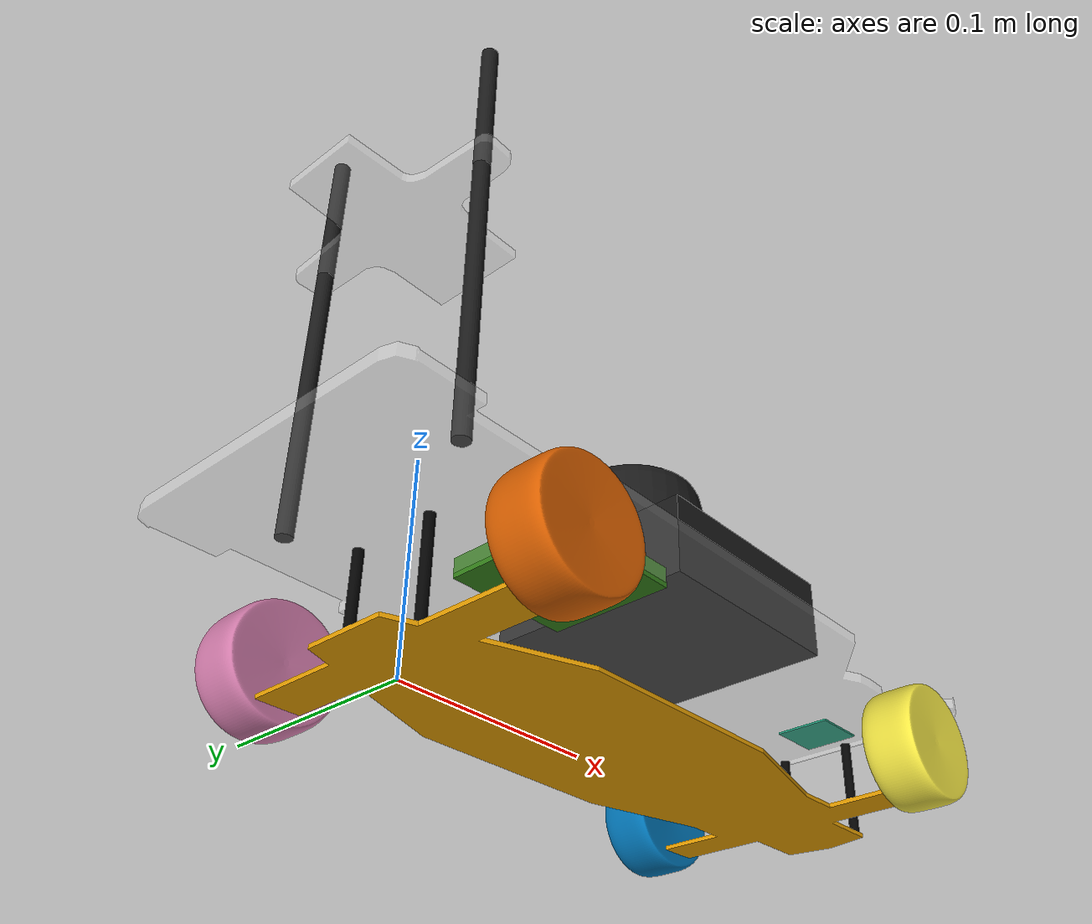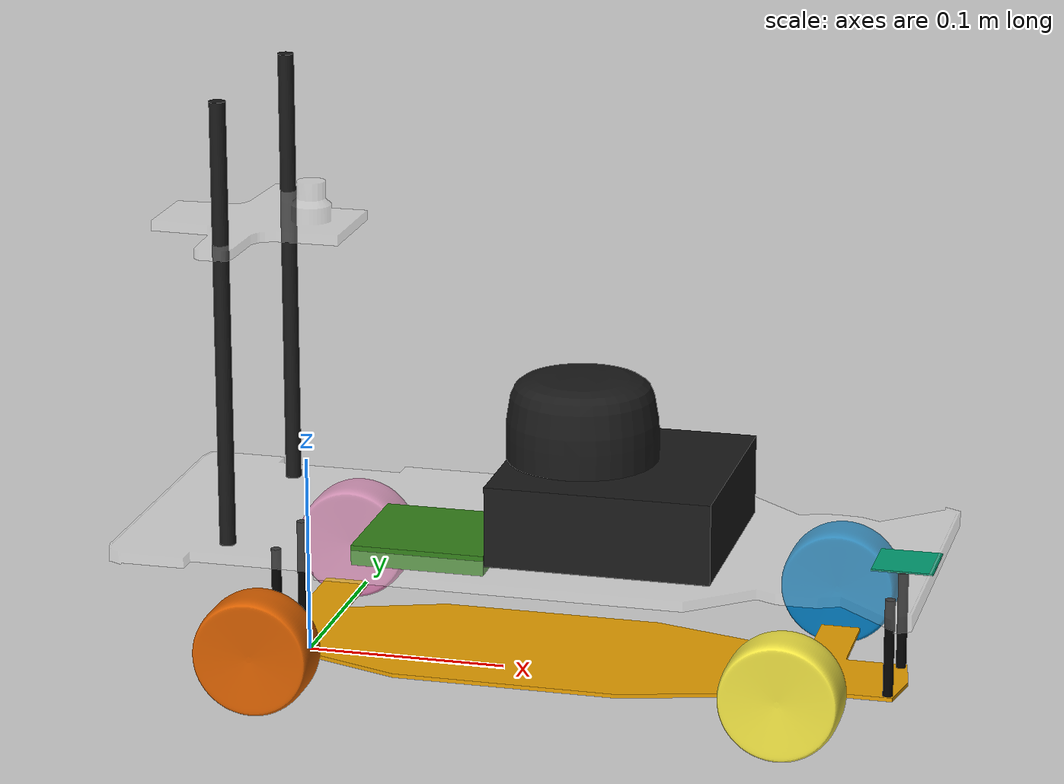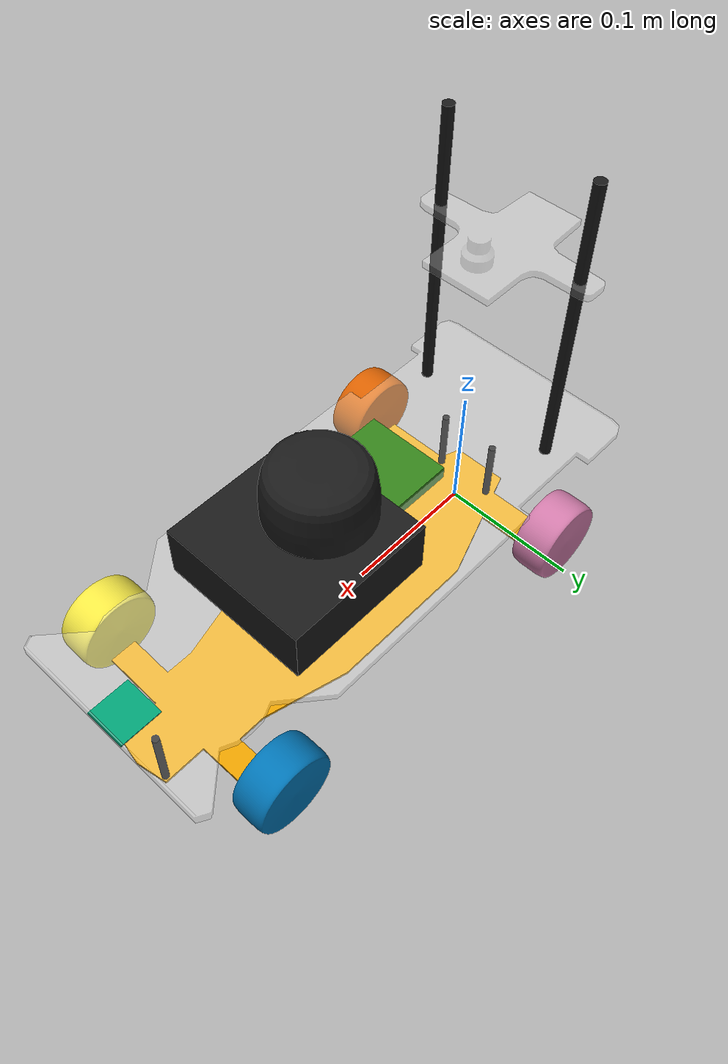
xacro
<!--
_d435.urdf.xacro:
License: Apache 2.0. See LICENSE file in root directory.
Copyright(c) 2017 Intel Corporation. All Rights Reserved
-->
<?xml version="1.0"?>
<robot name="$(arg car_name)" xmlns:xacro="http://www.ros.org/wiki/xacro">
    <xacro:include filename="$(find car_description)/urdf/_d435.urdf.xacro"/>
    <xacro:include filename="$(find car_description)/urdf/rplidar_a2.xacro"/>
    <xacro:include filename="$(find car_description)/urdf/common.xacro"/>
    <xacro:arg name="tf_prefix" default=""/>
    <xacro:arg name="agent_prefix" default=""/>

    <material name="black">
        <color rgba="0.1 0.1 0.1 1"/>
    </material>

    <material name="plastic">
        <color rgba="1 1 1 0.25"/>
    </material>

    <material name="imu">
        <color rgba="0.2 0.5 0.1 1"/>
    </material>

    <material name="grey">
        <color rgba="0.75 0.75 0.75 1"/>
    </material>

    <material name="white">
        <color rgba="0.95 0.95 0.95 1"/>
    </material>

    <link name="$(arg tf_prefix)base_link">
        <visual>
            <origin rpy="0.0 0 0" xyz="0.135 0 0.01"/>
            <geometry>
                <mesh filename="file://$(find car_description)/meshes/chasi.dae"/>
            </geometry>
        </visual>
        <collision>
            <origin rpy="0.0 0 0" xyz="0.135 0 0.01"/>
            <geometry>
                <mesh filename="file://$(find car_description)/meshes/chasi.dae"/>
            </geometry>
        </collision>
        <xacro:box_inertial_with_origin mass="30.0" x="0.2" y="0.1" z="0.05">
            <origin rpy="0.0 0 0" xyz="0.115 0 0.0"/>
        </xacro:box_inertial_with_origin>
    </link>

    <link name="$(arg tf_prefix)board">
        <visual>
            <origin rpy="0.0 0 0" xyz="0.115 0 0"/>
            <geometry>
                <mesh filename="file://$(find car_description)/meshes/board.dae"/>
            </geometry>
            <material name="plastic"/>
        </visual>
        <collision>
            <origin rpy="0.0 0 0" xyz="0.115 0 0"/>
            <geometry>
                <mesh filename="file://$(find car_description)/meshes/board.dae"/>
            </geometry>
        </collision>
        <xacro:box_inertial_with_origin x="0.3" y="0.1" z="0.1" mass="0.3">
            <origin xyz="0 0 0" rpy="0 0 0"/>
        </xacro:box_inertial_with_origin>
    </link>

    <link name="$(arg tf_prefix)camera_board">
        <visual>
            <origin rpy="0.0 0 0" xyz="0 0 0"/>
            <geometry>
                <mesh filename="file://$(find car_description)/meshes/camera_board.dae"/>
            </geometry>
            <material name="plastic"/>
        </visual>
        <collision>
            <origin rpy="0.0 0 0" xyz="0 0 0"/>
            <geometry>
                <mesh filename="file://$(find car_description)/meshes/camera_board.dae"/>
            </geometry>
        </collision>
        <inertial>
            <origin rpy="0.0 0 0" xyz="0 0 0"/>
            <mass value="0.1"/>
            <inertia ixx="0.00014165" ixy="0.0" ixz="0.0" iyy="0.00006758" iyz="0.0" izz="0.00020865"/>
        </inertial>
    </link>

    <xacro:macro name="wheel" params="name">
        <link name="${name}">
            <visual>
                <origin rpy="0.0 0.0 0.0" xyz="0.0 0.0 0.0"/>
                <geometry>
                    <mesh filename="file://$(find car_description)/meshes/wheel.dae"/>
                </geometry>
            </visual>
            <collision>
                <origin rpy="0 1.5707 1.5707" xyz="0 0 0"/>
                <geometry>
                    <sphere radius="0.0325"/>
                </geometry>
            </collision>
            <xacro:cylinder_inertial_with_origin radius="0.025" length="0.0325" mass="0.1">
                <origin xyz="0 0 0" rpy="0 1.5707 1.5707"/>
            </xacro:cylinder_inertial_with_origin>
        </link>

        <gazebo reference="${name}">
            <mu1>0.9</mu1>
            <mu2>0.9</mu2>
            <kp>1000000.0</kp> <!--contact stiffness-->
            <kd>1.0</kd> <!--damping-->
            <minDepth>0.001</minDepth>
        </gazebo>

    </xacro:macro>

    <xacro:wheel name="$(arg tf_prefix)wheel_fr"/>
    <xacro:wheel name="$(arg tf_prefix)wheel_fl"/>
    <xacro:wheel name="$(arg tf_prefix)wheel_br"/>
    <xacro:wheel name="$(arg tf_prefix)wheel_bl"/>

    <link name="$(arg tf_prefix)axis_fl">
        <visual>
            <origin rpy="0.0 0.0 0.0" xyz="0.0 0.0 0.0"/>
            <geometry>
                <box size="0.001 0.001 0.001"/>
            </geometry>
            <material name="black"/>
        </visual>
        <collision>
            <geometry>
                <box size="0 0 0"/>
            </geometry>
        </collision>
        <xacro:sphere_inertial radius="0.02" mass="0.15"/>
    </link>

    <link name="$(arg tf_prefix)axis_fr">
        <visual>
            <origin rpy="0.0 0.0 0.0" xyz="0.0 0.0 0.0"/>
            <geometry>
                <box size="0 0 0"/>
            </geometry>
            <material name="black"/>
        </visual>
        <collision>
            <geometry>
                <box size="0.001 0.001 0.001"/>
            </geometry>
        </collision>
        <xacro:sphere_inertial radius="0.02" mass="0.15"/>
    </link>

    <link name="$(arg tf_prefix)imu">
        <visual>
            <geometry>
                <box size="0.066 0.064 0.01"/>
            </geometry>
            <origin rpy="0 0 0" xyz="0 0 0"/>
            <material name="imu"/>
        </visual>
        <collision>
            <geometry>
                <box size="0.066 0.064 0.01"/>
            </geometry>
        </collision>
        <inertial>
            <mass value="0.2"/>
            <inertia ixx="0.00006993" ixy="0.0" ixz="0.0" iyy="0.00007427" iyz="0.0" izz="0.00014087"/>
        </inertial>
    </link>

    <link name="$(arg tf_prefix)marker">
        <visual>
            <geometry>
                <mesh filename="file://$(find car_description)/meshes/marker.dae"/>
            </geometry>
            <origin rpy="0 0 1.5708" xyz="0 0 0"/>

        </visual>
        <collision>
            <geometry>
                <box size="0.03 0.03 0.000001"/>
            </geometry>
        </collision>
        <inertial>
            <mass value="0.001"/>
            <inertia ixx="0.00000008" ixy="0.0" ixz="0.0" iyy="0.00000008" iyz="0.0" izz="0.00000015"/>
        </inertial>
    </link>

    <link name="$(arg tf_prefix)support_l">
        <visual>
            <geometry>
                <cylinder length="0.22" radius="0.004"/>
            </geometry>
            <origin rpy="0 0 0" xyz="0 0 0"/>
            <material name="black"/>
        </visual>
        <collision>
            <geometry>
                <cylinder length="0.22" radius="0.004"/>
            </geometry>
        </collision>
        <inertial>
            <mass value="0.001"/>
            <inertia ixx="0.00000404" ixy="0.0" ixz="0.0" iyy="0.00000404" iyz="0.0" izz="0.00000001"/>
        </inertial>
    </link>

    <link name="$(arg tf_prefix)support_r">
        <visual>
            <geometry>
                <cylinder length="0.22" radius="0.004"/>
            </geometry>
            <origin rpy="0 0 0" xyz="0 0 0"/>
            <material name="black"/>
        </visual>
        <collision>
            <geometry>
                <cylinder length="0.22" radius="0.004"/>
            </geometry>
        </collision>
        <inertial>
            <mass value="0.001"/>
            <inertia ixx="0.00000404" ixy="0.0" ixz="0.0" iyy="0.00000404" iyz="0.0" izz="0.00000001"/>
        </inertial>
    </link>

    <!-- BNO055 -->
    <link name="$(arg tf_prefix)bno055">
    </link>

    <link name="$(arg tf_prefix)nuc">
        <visual>
            <origin rpy="0 0 0" xyz="0 0 0.022"/>
            <geometry>
                <box size="0.11 0.11 0.04"/>
            </geometry>
            <material name="black"/>
        </visual>
        <collision>
            <origin rpy="0 0 0" xyz="0 0 0.022"/>
            <geometry>
                <box size="0.11 0.11 0.04"/>
            </geometry>
        </collision>

        <xacro:box_inertial_with_origin x="0.11" y="0.11" z="0.04" mass="0.7">
            <origin xyz="0 0 0.025" rpy="0 0 0"/>
        </xacro:box_inertial_with_origin>
    </link>

    <!-- front camera -->
    <xacro:property name="front_camera_name" value="camera"/>

    <xacro:sensor_d435 parent="$(arg tf_prefix)camera_board" sensor_name="$(arg tf_prefix)camera">
        <origin xyz="0.03 0 0.025" rpy="0 0.25 0"/>
    </xacro:sensor_d435>

    <xacro:sensor_d435 parent="$(arg tf_prefix)camera_board" sensor_name="rear_camera">
        <origin xyz="-0.02 0 0.025" rpy="0 0.25 3.141"/>
    </xacro:sensor_d435>

    <xacro:sensor_rplidar_a2 parent="$(arg tf_prefix)board" prefix="lidar" tf_prefix="$(arg tf_prefix)">
        <origin xyz="0.14 0 0.0425" rpy="0 0 0"/>
    </xacro:sensor_rplidar_a2>

    <joint name="$(arg tf_prefix)joint_board_to_bno055" type="fixed">
        <parent link="$(arg tf_prefix)board"/>
        <child link="$(arg tf_prefix)bno055"/>
        <origin xyz="0.235 0.0 0.023" rpy="0 0 1.5708"/>
    </joint>

    <joint name="$(arg tf_prefix)base_link_board" type="fixed">
        <parent link="$(arg tf_prefix)base_link"/>
        <child link="$(arg tf_prefix)board"/>
        <origin xyz="0 0 0.07"/>
    </joint>

    <joint name="$(arg tf_prefix)board_cameraboard" type="fixed">
        <parent link="$(arg tf_prefix)board"/>
        <child link="$(arg tf_prefix)camera_board"/>
        <origin xyz="-0.025 0 0.15"/>
    </joint>

    <joint name="$(arg tf_prefix)board_imu" type="fixed">
        <parent link="$(arg tf_prefix)board"/>
        <child link="$(arg tf_prefix)imu"/>
        <origin xyz="0.07 -0.017 0"/>
    </joint>

    <joint name="$(arg tf_prefix)board_marker" type="fixed">
        <parent link="$(arg tf_prefix)board"/>
        <child link="$(arg tf_prefix)marker"/>
        <origin xyz="0.30 0.0 0.0025"/>
    </joint>

    <joint name="$(arg tf_prefix)board_nuc" type="fixed">
        <parent link="$(arg tf_prefix)board"/>
        <child link="$(arg tf_prefix)nuc"/>
        <origin xyz="0.16 0 0"/>
    </joint>

    <joint name="$(arg tf_prefix)frontwheel_steering_left" type="revolute">
        <axis xyz="0 0 1"/>
        <limit effort="100.0" lower="-0.6" upper="0.6" velocity="1.0"/>
        <parent link="$(arg tf_prefix)base_link"/>
        <child link="$(arg tf_prefix)axis_fl"/>
        <origin xyz="0.255 0.08 0.03" rpy="0.0 0.0 0.0"/>
        <dynamics damping="0.2" friction="0.1"/>
    </joint>

    <joint name="$(arg tf_prefix)frontwheel_steering_right" type="revolute">
        <axis xyz="0 0 1"/>
        <limit effort="100.0" lower="-0.6" upper="0.6" velocity="1.0"/>
        <parent link="$(arg tf_prefix)base_link"/>
        <child link="$(arg tf_prefix)axis_fr"/>
        <origin xyz="0.255 -0.08 0.03" rpy="0.0 0.0 0.0"/>
        <dynamics damping="0.2" friction="0.1"/>
    </joint>

    <joint name="$(arg tf_prefix)frontwheel_left" type="continuous">
        <axis xyz="0 1 0"/>
        <parent link="$(arg tf_prefix)axis_fl"/>
        <child link="$(arg tf_prefix)wheel_fl"/>
        <origin xyz="0 0 0" rpy="0.0 0.0 0.0"/>
        <limit effort="100.0" velocity="100.0"/>
        <dynamics damping="0.1" friction="0.1"/>
    </joint>

    <joint name="$(arg tf_prefix)frontwheel_right" type="continuous">
        <axis xyz="0 1 0"/>
        <parent link="$(arg tf_prefix)axis_fr"/>
        <child link="$(arg tf_prefix)wheel_fr"/>
        <origin xyz="0 0 0" rpy="0.0 0.0 0.0"/>
        <limit effort="100.0" velocity="100.0"/>
        <dynamics damping="0.1" friction="0.1"/>
    </joint>

    <joint name="$(arg tf_prefix)rearwheel_left" type="continuous">
        <axis xyz="0 1 0"/>
        <parent link="$(arg tf_prefix)base_link"/>
        <child link="$(arg tf_prefix)wheel_bl"/>
        <origin xyz="0 0.085 0.03" rpy="0.0 0.0 0.0"/>
        <limit effort="100.0" velocity="100.0"/>
        <dynamics damping="0.1" friction="0.1"/>
    </joint>

    <joint name="$(arg tf_prefix)rearwheel_right" type="continuous">
        <axis xyz="0 1 0"/>
        <parent link="$(arg tf_prefix)base_link"/>
        <child link="$(arg tf_prefix)wheel_br"/>
        <origin xyz="0 -0.085 0.03" rpy="0.0 0.0 0.0"/>
        <limit effort="100.0" velocity="100.0"/>
        <dynamics damping="0.1" friction="0.1"/>
    </joint>

    <joint name="$(arg tf_prefix)board_support_l" type="fixed">
        <parent link="$(arg tf_prefix)board"/>
        <child link="$(arg tf_prefix)support_l"/>
        <origin xyz="-0.024000 0.053000 0.112000"/>
    </joint>

    <joint name="$(arg tf_prefix)board_support_r" type="fixed">
        <parent link="$(arg tf_prefix)board"/>
        <child link="$(arg tf_prefix)support_r"/>
        <origin xyz="-0.024000 -0.053000 0.112000"/>
    </joint>

    <ros2_control name="GazeboSystem" type="system">
        <hardware>
          <plugin>gz_ros2_control/GazeboSimSystem</plugin>
        </hardware>
        <joint name="$(arg tf_prefix)rearwheel_left">
            <command_interface name="velocity"/>
            <state_interface name="position"/>
            <state_interface name="velocity"/>
        </joint>

        <joint name="$(arg tf_prefix)rearwheel_right">
            <command_interface name="velocity"/>
            <state_interface name="position"/>
            <state_interface name="velocity"/>
        </joint>

        <joint name="$(arg tf_prefix)frontwheel_left">
            <command_interface name="velocity"/>
            <state_interface name="position"/>
            <state_interface name="velocity"/>
        </joint>
        <joint name="$(arg tf_prefix)frontwheel_right">
            <command_interface name="velocity"/>
            <state_interface name="position"/>
            <state_interface name="velocity"/>
        </joint>

        <joint name="$(arg tf_prefix)frontwheel_steering_left">
            <command_interface name="position"/>
            <state_interface name="position"/>
        </joint>
        <joint name="$(arg tf_prefix)frontwheel_steering_right">
            <command_interface name="position"/>
            <state_interface name="position"/>
        </joint>

    </ros2_control>

    <gazebo reference="$(arg tf_prefix)rearwheel_left">
        <implicitSpringDamper>true</implicitSpringDamper>
    </gazebo>
    <gazebo reference="$(arg tf_prefix)rearwheel_right">
        <implicitSpringDamper>true</implicitSpringDamper>
    </gazebo>
    <gazebo reference="$(arg tf_prefix)frontwheel_right">
        <implicitSpringDamper>true</implicitSpringDamper>
    </gazebo>
    <gazebo reference="$(arg tf_prefix)frontwheel_left">
        <implicitSpringDamper>true</implicitSpringDamper>
    </gazebo>
    <gazebo reference="$(arg tf_prefix)frontwheel_steering_right">
        <implicitSpringDamper>true</implicitSpringDamper>
    </gazebo>
    <gazebo reference="$(arg tf_prefix)frontwheel_steering_left">
        <implicitSpringDamper>true</implicitSpringDamper>
    </gazebo>

      <gazebo>
        <!-- Joint state publisher -->
        <plugin filename="gz_ros2_control-system" name="gz_ros2_control::GazeboSimROS2ControlPlugin">
          <parameters>$(find sim_car_controller)/config/control.yaml</parameters>
        </plugin>

        <plugin
              filename="gz-sim-odometry-publisher-system"
              name="gz::sim::systems::OdometryPublisher">
          <odom_frame>map</odom_frame>
          <robot_base_frame>base_link</robot_base_frame>
          <odom_publish_frequency>30.0</odom_publish_frequency>
          <odom_topic>/simulation/odom_ground_truth</odom_topic>
        </plugin>
      </gazebo>

    <gazebo reference="$(arg tf_prefix)imu">
        <sensor name="$(arg tf_prefix)imu" type="imu">
            <always_on>1</always_on>
            <update_rate>100</update_rate>
            <visualize>true</visualize>
            <topic>/sensors/imu</topic>
        </sensor>
    </gazebo>

    <gazebo reference="$(arg tf_prefix)camera_depth_frame">
        <sensor type="depth" name="/sensors/camera/depth">
            <always_on>1</always_on>
            <visualize>true</visualize>
            <update_rate>15.0</update_rate>
            <topic>/sensors/camera/depth/image_rect_raw</topic>
            <gz_frame_id>$(arg tf_prefix)camera_depth_optical_frame</gz_frame_id>
            <pose>0 0 0 0 0.25 0</pose>
            <camera>
                <horizontal_fov>1.3900031938640904</horizontal_fov>
                <image>
                    <width>640</width>
                    <height>480</height>
                    <format>L8</format>
                </image>
                <clip>
                    <near>0.05</near>
                    <far>15.0</far>
                </clip>
                <noise>
                    <type>gaussian</type>
                    <mean>0.0</mean>
                    <stddev>0.007</stddev>
                </noise>
            </camera>
        </sensor>
    </gazebo>

    <gazebo reference="$(arg tf_prefix)camera_color_frame">
        <sensor type="camera" name="/sensors/camera/color">
            <update_rate>15.0</update_rate>
            <topic>/sensors/camera/color/image_raw</topic>
            <gz_frame_id>$(arg tf_prefix)camera_color_optical_frame</gz_frame_id>
            <pose>0 0 0.02 0 0.25 0</pose>
            <camera>
                <horizontal_fov>0.95417536656506718</horizontal_fov>
                <image>
                    <width>640</width>
                    <height>480</height>
                    <format>R8G8B8</format>
                </image>
                <clip>
                    <near>0.01</near>
                    <far>50.0</far>
                </clip>
                <noise>
                    <type>gaussian</type>
                    <mean>0.0</mean>
                    <stddev>0.01</stddev>
                </noise>

            </camera>
        </sensor>
    </gazebo>

    <gazebo reference="$(arg tf_prefix)laser">
        <sensor type="gpu_lidar" name="rp_lidar_sensor">
            <pose relative_to='$(arg tf_prefix)laser'>0 0 0 0 0 0</pose>
            <visualize>true</visualize>
            <update_rate>10</update_rate>
            <topic>/sensors/rplidar/scan</topic>
            <always_on>1</always_on>
            <ray>
                <scan>
                    <horizontal>
                        <samples>360</samples>
                        <resolution>1</resolution>
                        <min_angle>-3.14159</min_angle>
                        <max_angle>3.14159</max_angle>
                    </horizontal>
                    <vertical>
                        <samples>1</samples>
                        <resolution>0.01</resolution>
                        <min_angle>0</min_angle>
                        <max_angle>0</max_angle>
                    </vertical>
                </scan>
                <range>
                    <min>0.15</min>
                    <max>8.0</max>
                    <resolution>0.01</resolution>
                </range>
                <noise>
                    <type>gaussian</type>
                    <mean>0.0</mean>
                    <stddev>0.01</stddev>
                </noise>
            </ray>
        </sensor>
    </gazebo>

    <gazebo reference="$(arg tf_prefix)support_r">
        <material>Gazebo/Black</material>
    </gazebo>

    <gazebo reference="$(arg tf_prefix)support_l">
        <material>Gazebo/Black</material>
    </gazebo>

    <gazebo reference="$(arg tf_prefix)nuc">
        <material>Gazebo/Black</material>
    </gazebo>
</robot>

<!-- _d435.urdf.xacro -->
<robot name="sensor_d435" xmlns:xacro="http://ros.org/wiki/xacro">
  <xacro:macro name="sensor_d435" params="sensor_name parent *origin">
    <xacro:property name="M_PI" value="3.1415926535897931" />

    <!-- The following values are approximate, and the camera node
     publishing TF values with actual calibrated camera extrinsic values -->
    <xacro:property name="d435_cam_depth_to_left_ir_offset" value="0.0"/>
    <xacro:property name="d435_cam_depth_to_right_ir_offset" value="-0.050"/>
    <xacro:property name="d435_cam_depth_to_color_offset" value="0.015"/>

    <!-- The following values model the aluminum peripherial case for the
  	D435 camera, with the camera joint represented by the actual
  	peripherial camera tripod mount -->
    <xacro:property name="d435_cam_width" value="0.090"/>
    <xacro:property name="d435_cam_height" value="0.025"/>
    <xacro:property name="d435_cam_depth" value="0.02505"/>
    <xacro:property name="d435_cam_mount_from_center_offset" value="0.0149"/>

    <!-- The following offset is relative the the physical D435 camera peripherial
  	camera tripod mount -->
    <xacro:property name="d435_cam_depth_px" value="${d435_cam_mount_from_center_offset}"/>
    <xacro:property name="d435_cam_depth_py" value="0.0175"/>
    <xacro:property name="d435_cam_depth_pz" value="${d435_cam_height/2}"/>

    <material name="${sensor_name}aluminum">
      <color rgba="0.5 0.5 0.5 1"/>
    </material>

    <!-- camera body, with origin at bottom screw mount -->
    <joint name="${sensor_name}_joint" type="fixed">
      <xacro:insert_block name="origin" />
      <parent link="${parent}"/>
      <child link="${sensor_name}_bottom_screw_frame" />
    </joint>
    <link name="${sensor_name}_bottom_screw_frame"/>

    <joint name="${sensor_name}_link_joint" type="fixed">
      <origin xyz="0 ${d435_cam_depth_py} ${d435_cam_depth_pz}" rpy="0 0 0"/>
      <parent link="${sensor_name}_bottom_screw_frame"/>
      <child link="${sensor_name}_link" />
    </joint>

    <link name="${sensor_name}_link">
      <collision>
        <origin xyz="0 ${-d435_cam_depth_py} 0" rpy="0 0 0"/>
        <geometry>
          <box size="${d435_cam_depth} ${d435_cam_width} ${d435_cam_height}"/>
        </geometry>
      </collision>
      <inertial>
        <!-- The following are not reliable values, and should not be used for modeling -->
        <mass value="0.1" />
        <origin xyz="0 0 0" />
        <inertia ixx="0.003881243" ixy="0.0" ixz="0.0" iyy="0.000498940" iyz="0.0" izz="0.003879257" />
      </inertial>
    </link>

    <!-- camera depth joints and links -->
    <joint name="${sensor_name}_depth_joint" type="fixed">
      <origin xyz="0 0 0" rpy="0 0 0"/>
      <parent link="${sensor_name}_link"/>
      <child link="${sensor_name}_depth_frame" />
    </joint>
    <link name="${sensor_name}_depth_frame"/>

    <joint name="${sensor_name}_depth_optical_joint" type="fixed">
      <origin xyz="0 0 0" rpy="${-M_PI/2} 0 ${-M_PI/2}" />
      <parent link="${sensor_name}_depth_frame" />
      <child link="${sensor_name}_depth_optical_frame" />
    </joint>
    <link name="${sensor_name}_depth_optical_frame"/>

    <!-- camera left IR joints and links -->
    <joint name="${sensor_name}_left_ir_joint" type="fixed">
      <origin xyz="0 ${d435_cam_depth_to_left_ir_offset} 0" rpy="0 0 0" />
      <parent link="${sensor_name}_depth_frame" />
      <child link="${sensor_name}_left_ir_frame" />
    </joint>
    <link name="${sensor_name}_left_ir_frame"/>

    <joint name="${sensor_name}_left_ir_optical_joint" type="fixed">
      <origin xyz="0 0 0" rpy="${-M_PI/2} 0 ${-M_PI/2}" />
      <parent link="${sensor_name}_left_ir_frame" />
      <child link="${sensor_name}_left_ir_optical_frame" />
    </joint>
    <link name="${sensor_name}_left_ir_optical_frame"/>

    <!-- camera right IR joints and links -->
    <joint name="${sensor_name}_right_ir_joint" type="fixed">
      <origin xyz="0 ${d435_cam_depth_to_right_ir_offset} 0" rpy="0 0 0" />
      <parent link="${sensor_name}_depth_frame" />
      <child link="${sensor_name}_right_ir_frame" />
    </joint>
    <link name="${sensor_name}_right_ir_frame"/>

    <joint name="${sensor_name}_right_ir_optical_joint" type="fixed">
      <origin xyz="0 0 0" rpy="${-M_PI/2} 0 ${-M_PI/2}" />
      <parent link="${sensor_name}_right_ir_frame" />
      <child link="${sensor_name}_right_ir_optical_frame" />
    </joint>
    <link name="${sensor_name}_right_ir_optical_frame"/>

    <!-- camera color joints and links -->
    <joint name="${sensor_name}_color_joint" type="fixed">
      <origin xyz="0 ${d435_cam_depth_to_color_offset} 0" rpy="0 0 0" />
      <parent link="${sensor_name}_depth_frame" />
      <child link="${sensor_name}_color_frame" />
    </joint>
    <link name="${sensor_name}_color_frame"/>

    <joint name="${sensor_name}_color_optical_joint" type="fixed">
      <origin xyz="0 0 0" rpy="${-M_PI/2} 0 ${-M_PI/2}" />
      <parent link="${sensor_name}_color_frame" />
      <child link="${sensor_name}_color_optical_frame" />
    </joint>
    <link name="${sensor_name}_color_optical_frame"/>
  </xacro:macro>
</robot>

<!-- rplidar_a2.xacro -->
<robot xmlns:xacro="http://www.ros.org/wiki/xacro">

    <xacro:macro name="sensor_rplidar_a2"
                 params="prefix parent tf_prefix prefix_topic:='front_laser' *origin min_angle:=-3.14159 max_angle:=3.14159">

        <joint name="${tf_prefix}${prefix}_base_joint" type="fixed">
            <xacro:insert_block name="origin"/>
            <parent link="${parent}"/>
            <child link="${tf_prefix}${prefix}_base_link"/>
        </joint>

        <link name="${tf_prefix}${prefix}_base_link">
            <collision>
                <origin xyz="0 0 0" rpy="0 0 0"/>
                <geometry>
                    <mesh filename="file://$(find car_description)/meshes/laser.dae"/>
                </geometry>
            </collision>

            <visual>
                <origin xyz="0 0 0" rpy="0 0 0"/>
                <geometry>
                    <mesh filename="file://$(find car_description)/meshes/laser.dae"/>
                </geometry>
                <material name="black"/>
            </visual>

            <inertial>
                <mass value="1e-5"/>
                <origin xyz="0 0 0" rpy="0 0 0"/>
                <inertia ixx="1e-6" ixy="0" ixz="0" iyy="1e-6" iyz="0" izz="1e-6"/>
            </inertial>
        </link>

        <joint name="${tf_prefix}${prefix}_laser_joint" type="fixed">
            <origin xyz="0 0 0.03086" rpy="0 0 3.1415"/>
            <parent link="${tf_prefix}${prefix}_base_link"/>
            <child link="${tf_prefix}laser"/>
        </joint>

        <link name="${tf_prefix}laser">
        </link>
    </xacro:macro>
</robot>

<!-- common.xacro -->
<robot
        xmlns:xacro="http://ros.org/wiki/xacro">
    <xacro:property name="M_PI" value="3.1415926535897931" />

    <!-- see https://secure.wikimedia.org/wikipedia/en/wiki/List_of_moment_of_inertia_tensors -->

    <!-- #################### versions without origin #################### -->
    <xacro:macro name="sphere_inertial" params="radius mass">
        <inertial>
            <mass value="${mass}" />
            <origin xyz="0 0 0" />
            <inertia ixx="${0.4 * mass * radius * radius}" ixy="0.0" ixz="0.0"
                     iyy="${0.4 * mass * radius * radius}" iyz="0.0"
                     izz="${0.4 * mass * radius * radius}" />
        </inertial>
    </xacro:macro>

    <xacro:macro name="cylinder_inertial" params="radius length mass">
        <inertial>
            <mass value="${mass}" />
            <origin xyz="0 0 0" />
            <inertia ixx="${0.0833333 * mass * (3 * radius * radius + length * length)}" ixy="0.0" ixz="0.0"
                     iyy="${0.0833333 * mass * (3 * radius * radius + length * length)}" iyz="0.0"
                     izz="${0.5 * mass * radius * radius}" />
        </inertial>
    </xacro:macro>

    <xacro:macro name="box_inertial" params="x y z mass">
        <inertial>
            <mass value="${mass}" />
            <origin xyz="0 0 0" />
            <inertia ixx="${0.0833333 * mass * (y*y + z*z)}" ixy="0.0" ixz="0.0"
                     iyy="${0.0833333 * mass * (x*x + z*z)}" iyz="0.0"
                     izz="${0.0833333 * mass * (x*x + y*y)}" />
        </inertial>
    </xacro:macro>

    <!-- #################### versions with origin #################### -->
    <xacro:macro name="sphere_inertial_with_origin" params="radius mass *origin">
        <inertial>
            <mass value="${mass}" />
            <xacro:insert_block name="origin" />
            <inertia ixx="${0.4 * mass * radius * radius}" ixy="0.0" ixz="0.0"
                     iyy="${0.4 * mass * radius * radius}" iyz="0.0"
                     izz="${0.4 * mass * radius * radius}" />
        </inertial>
    </xacro:macro>

    <xacro:macro name="cylinder_inertial_with_origin" params="radius length mass *origin">
        <inertial>
            <mass value="${mass}" />
            <xacro:insert_block name="origin" />
            <inertia ixx="${0.0833333 * mass * (3 * radius * radius + length * length)}" ixy="0.0" ixz="0.0"
                     iyy="${0.0833333 * mass * (3 * radius * radius + length * length)}" iyz="0.0"
                     izz="${0.5 * mass * radius * radius}" />
        </inertial>
    </xacro:macro>

    <xacro:macro name="box_inertial_with_origin" params="x y z mass *origin">
        <inertial>
            <mass value="${mass}" />
            <xacro:insert_block name="origin" />
            <inertia ixx="${0.0833333 * mass * (y*y + z*z)}" ixy="0.0" ixz="0.0"
                     iyy="${0.0833333 * mass * (x*x + z*z)}" iyz="0.0"
                     izz="${0.0833333 * mass * (x*x + y*y)}" />
        </inertial>
    </xacro:macro>

</robot>
